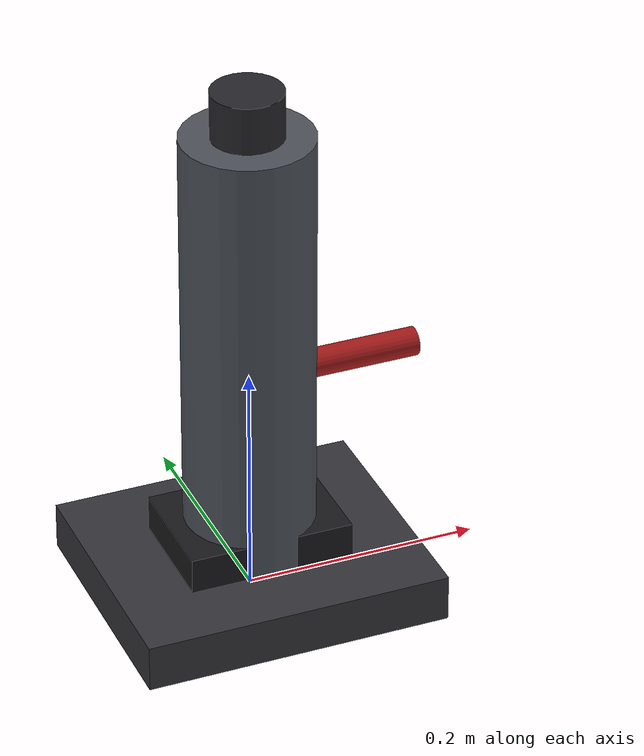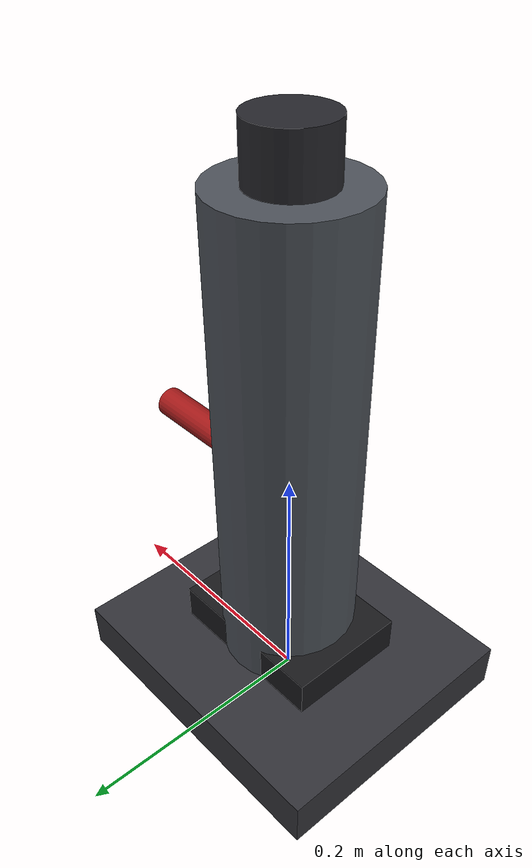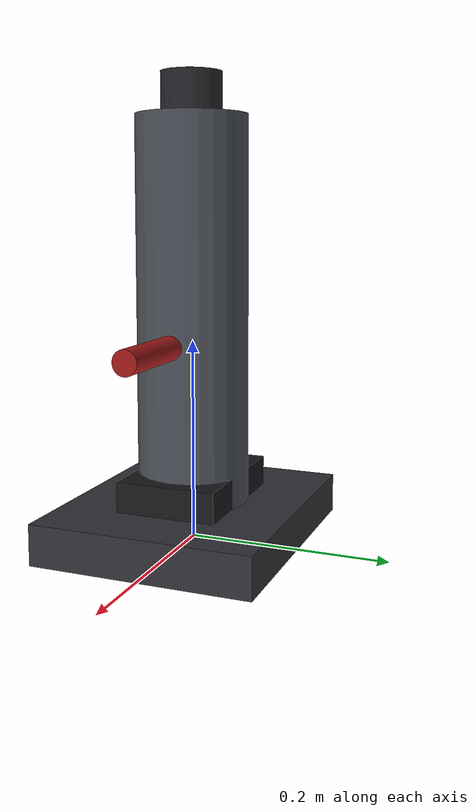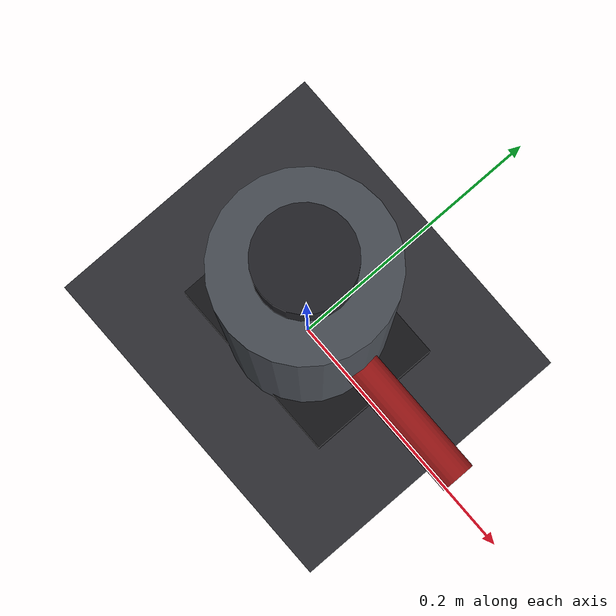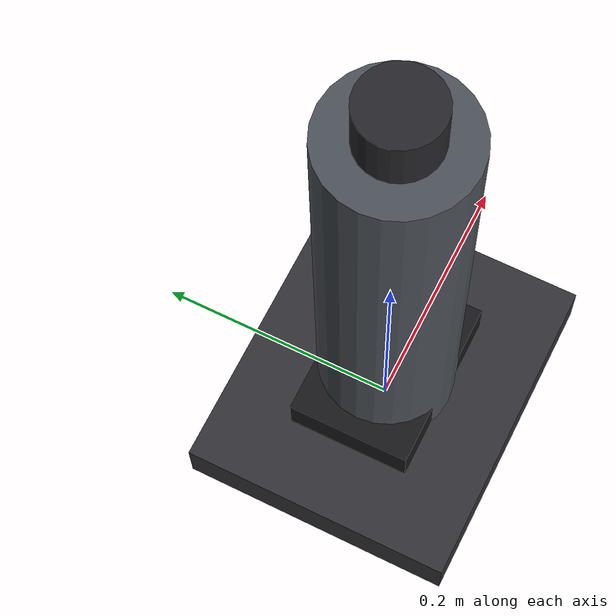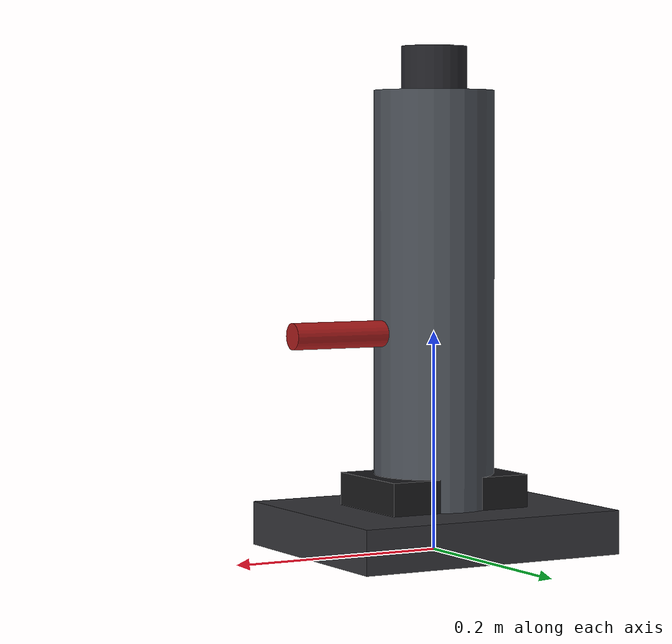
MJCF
<?xml version="1.0" encoding="utf-8"?>
<mujoco model="real_lab_khalifa_university_tem">
  <compiler angle="radian" autolimits="true"/>
  <default>
    <default class="body"><geom contype="1" conaffinity="1"/></default>
  </default>
  <worldbody>
    <body name="base">
      <geom type="box" size="0.13 0.11 0.02" pos="0 0 0.02" rgba="0.2 0.2 0.22 1" class="body"/>
      <geom type="cylinder" size="0.055 0.19" pos="0 0 0.23" rgba="0.3 0.32 0.35 1" class="body"/>
      <geom type="cylinder" size="0.03 0.02" pos="0 0 0.44" rgba="0.15 0.15 0.17 1" class="body"/>
      <geom type="box" size="0.07 0.05 0.015" pos="0 0 0.055" rgba="0.1 0.1 0.11 1" class="body"/>
      <body name="specimen_airlock" pos="0.055 0.0 0.2">
        <joint name="specimen_airlock_joint" type="hinge" axis="0 0 1" range="0 1.3" damping="0.5" frictionloss="0.2"/>
  <geom type="cylinder" size="0.012 0.06" pos="0.03 0 0" rgba="0.65 0.1 0.1 1" class="body" quat="0.707 0 0.707 0"/>
      </body>
    </body>
  </worldbody>
</mujoco>
